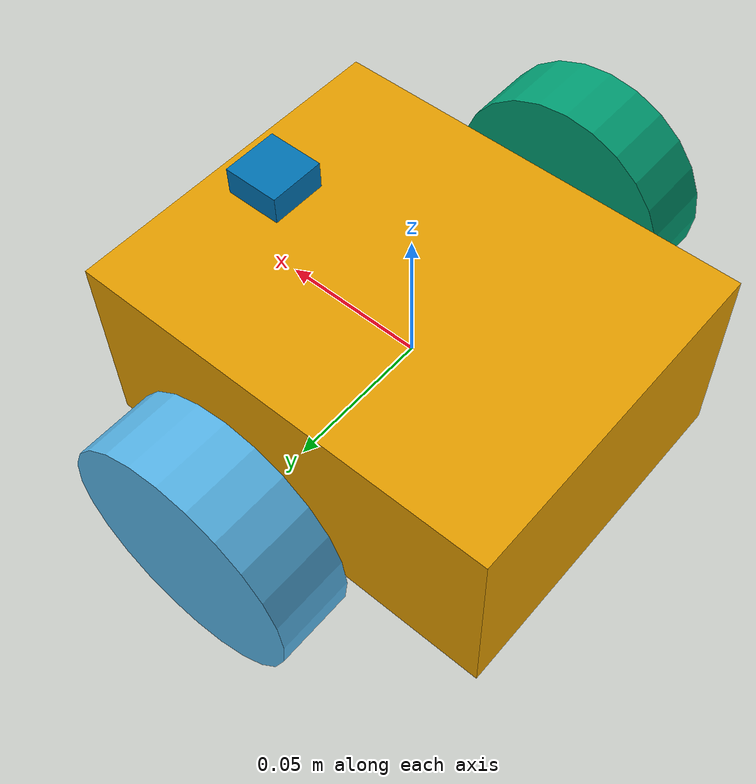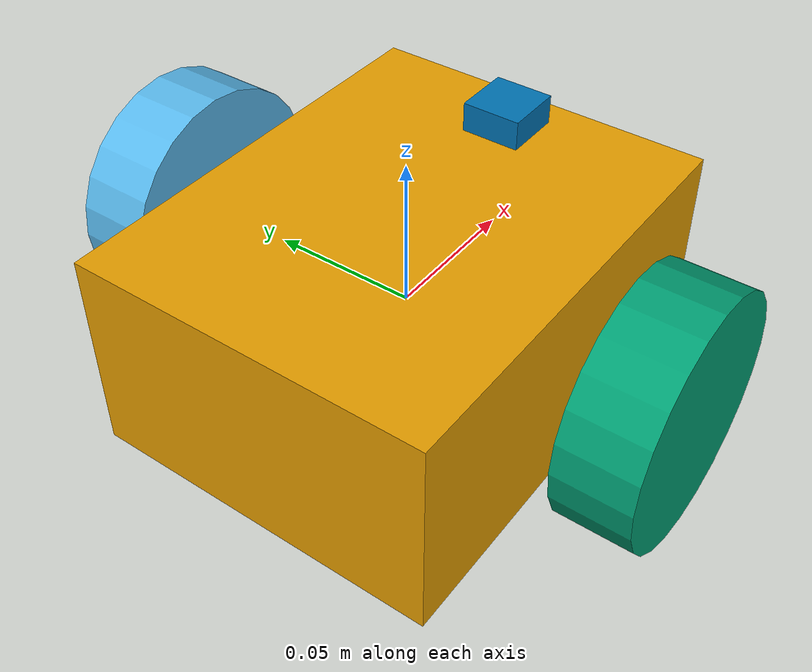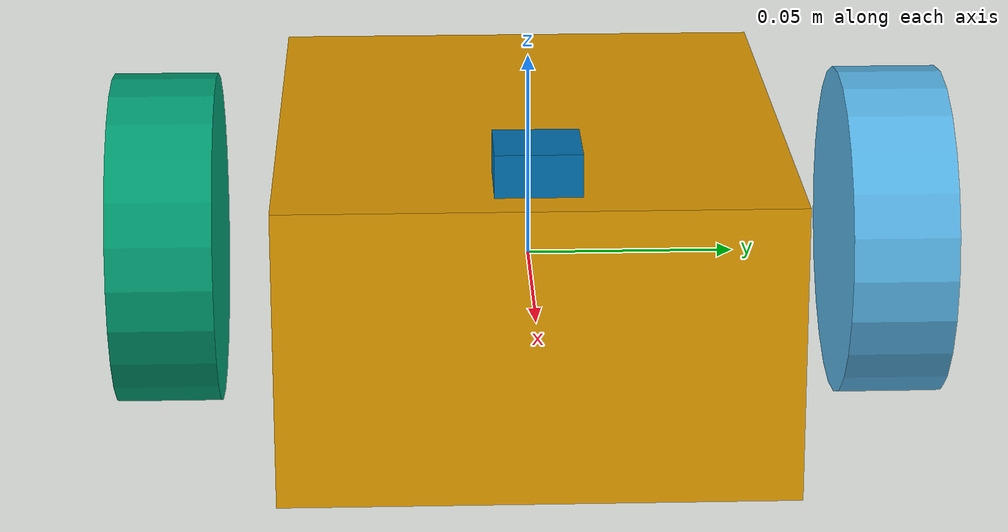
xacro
<?xml version="1.0"?>
<robot name="pipe_bot" xmlns:xacro="http://www.ros.org/wiki/xacro">

  <!-- Constants                                                            -->
  <xacro:property name="body_len"    value="0.150"/>
  <xacro:property name="body_width"  value="0.120"/>
  <xacro:property name="body_height" value="0.070"/>

  <xacro:property name="wheel_radius" value="0.040"/>
  <xacro:property name="wheel_len"    value="0.025"/>
  <!-- lateral offset from body centre to wheel centre -->
  <xacro:property name="wheel_y"      value="0.0875"/>
  <!-- wheel axle is level with the bottom face of the body -->
  <xacro:property name="wheel_z"      value="${-body_height/2 + wheel_radius}"/>

  <xacro:property name="caster_r"    value="0.015"/>
  <xacro:property name="caster_x"    value="${-body_len/2 + caster_r}"/>
  <xacro:property name="caster_z"    value="${-body_height/2 + caster_r}"/>

  <!-- Inertia helpers -->
  <xacro:macro name="box_inertia" params="m lx ly lz">
    <inertial>
      <mass value="${m}"/>
      <inertia
        ixx="${m*(ly*ly+lz*lz)/12}"  ixy="0" ixz="0"
        iyy="${m*(lx*lx+lz*lz)/12}"  iyz="0"
        izz="${m*(lx*lx+ly*ly)/12}"/>
    </inertial>
  </xacro:macro>

  <xacro:macro name="cylinder_inertia" params="m r l">
    <inertial>
      <mass value="${m}"/>
      <inertia
        ixx="${m*(3*r*r+l*l)/12}" ixy="0" ixz="0"
        iyy="${m*(3*r*r+l*l)/12}" iyz="0"
        izz="${m*r*r/2}"/>
    </inertial>
  </xacro:macro>

  <xacro:macro name="sphere_inertia" params="m r">
    <inertial>
      <mass value="${m}"/>
      <inertia
        ixx="${2*m*r*r/5}" ixy="0" ixz="0"
        iyy="${2*m*r*r/5}" iyz="0"
        izz="${2*m*r*r/5}"/>
    </inertial>
  </xacro:macro>

  <!-- base_link — robot body                                               -->
  <link name="base_link">
    <xacro:box_inertia m="3.0"
      lx="${body_len}" ly="${body_width}" lz="${body_height}"/>
    <visual>
      <geometry>
        <box size="${body_len} ${body_width} ${body_height}"/>
      </geometry>
    </visual>
    <collision>
      <geometry>
        <box size="${body_len} ${body_width} ${body_height}"/>
      </geometry>
    </collision>
  </link>

  <!-- Left wheel                                                           -->
  <joint name="left_wheel_joint" type="continuous">
    <parent link="base_link"/>
    <child  link="left_wheel"/>
    <origin xyz="0 ${wheel_y} ${wheel_z}" rpy="${pi/2} 0 0"/>
    <axis   xyz="0 0 1"/>
  </joint>

  <link name="left_wheel">
    <xacro:cylinder_inertia m="0.3" r="${wheel_radius}" l="${wheel_len}"/>
    <visual>
      <geometry>
        <cylinder radius="${wheel_radius}" length="${wheel_len}"/>
      </geometry>
    </visual>
    <collision>
      <geometry>
        <cylinder radius="${wheel_radius}" length="${wheel_len}"/>
      </geometry>
    </collision>
  </link>

  <!-- Right wheel                                                          -->
  <joint name="right_wheel_joint" type="continuous">
    <parent link="base_link"/>
    <child  link="right_wheel"/>
    <origin xyz="0 ${-wheel_y} ${wheel_z}" rpy="${pi/2} 0 0"/>
    <axis   xyz="0 0 1"/>
  </joint>

  <link name="right_wheel">
    <xacro:cylinder_inertia m="0.3" r="${wheel_radius}" l="${wheel_len}"/>
    <visual>
      <geometry>
        <cylinder radius="${wheel_radius}" length="${wheel_len}"/>
      </geometry>
    </visual>
    <collision>
      <geometry>
        <cylinder radius="${wheel_radius}" length="${wheel_len}"/>
      </geometry>
    </collision>
  </link>

  <!-- Caster (rear, passive — fixed joint, frictionless in Gazebo)        -->
  <joint name="caster_joint" type="fixed">
    <parent link="base_link"/>
    <child  link="caster_link"/>
    <origin xyz="${caster_x} 0 ${caster_z}" rpy="0 0 0"/>
  </joint>

  <link name="caster_link">
    <xacro:sphere_inertia m="0.05" r="${caster_r}"/>
    <visual>
      <geometry>
        <sphere radius="${caster_r}"/>
      </geometry>
    </visual>
    <collision>
      <geometry>
        <sphere radius="${caster_r}"/>
      </geometry>
    </collision>
  </link>

  <!-- camera_link                                                          -->
  <!-- Mounted on top of the body, near the front face.                    -->
  <!-- Looks forward along the robot +X axis.                              -->
  <!-- With a 180-deg fisheye the pipe wall appears at ~50% image radius.  -->
  <joint name="camera_joint" type="fixed">
    <parent link="base_link"/>
    <child  link="camera_link"/>
    <!-- Front of body (x = body_len/2 - 0.02 m inset), top face (z = body_height/2) -->
    <origin xyz="${body_len/2 - 0.02} 0 ${body_height/2}" rpy="0 0 0"/>
  </joint>

  <link name="camera_link">
    <inertial>
      <mass value="0.05"/>
      <inertia ixx="1e-6" ixy="0" ixz="0"
               iyy="1e-6" iyz="0"
               izz="1e-6"/>
    </inertial>
    <visual>
      <geometry>
        <box size="0.02 0.02 0.02"/>
      </geometry>
    </visual>
    <collision>
      <geometry>
        <box size="0.02 0.02 0.02"/>
      </geometry>
    </collision>
  </link>

  <!-- imu_link                                                             -->
  <!-- Mounted at the body centre.                                          -->
  <joint name="imu_joint" type="fixed">
    <parent link="base_link"/>
    <child  link="imu_link"/>
    <origin xyz="0 0 0" rpy="0 0 0"/>
  </joint>

  <link name="imu_link">
    <inertial>
      <mass value="0.01"/>
      <inertia ixx="1e-7" ixy="0" ixz="0"
               iyy="1e-7" iyz="0"
               izz="1e-7"/>
    </inertial>
    <visual>
      <geometry>
        <box size="0.01 0.01 0.01"/>
      </geometry>
    </visual>
  </link>

  <!-- Gazebo Harmonic plugins                                              -->

  <!-- Frictionless caster so it does not fight the diff-drive odometry -->
  <gazebo reference="caster_link">
    <mu1>0.0</mu1>
    <mu2>0.0</mu2>
    <kp>1000000.0</kp>
    <kd>100.0</kd>
  </gazebo>

  <!-- Wheel friction (good traction on pipe floor) -->
  <gazebo reference="left_wheel">
    <mu1>1.0</mu1>
    <mu2>1.0</mu2>
  </gazebo>
  <gazebo reference="right_wheel">
    <mu1>1.0</mu1>
    <mu2>1.0</mu2>
  </gazebo>

  <!-- Differential drive controller -->
  <gazebo>
    <plugin filename="gz-sim-diff-drive-system"
            name="gz::sim::systems::DiffDrive">
      <left_joint>left_wheel_joint</left_joint>
      <right_joint>right_wheel_joint</right_joint>
      <!-- 2 * wheel_y = 2 * 0.0875 -->
      <wheel_separation>0.175</wheel_separation>
      <wheel_radius>0.040</wheel_radius>
      <odom_publish_frequency>30</odom_publish_frequency>
      <!-- Gazebo internal topic names (bridged to ROS2 in Step 8) -->
      <topic>/cmd_vel</topic>
      <odom_topic>/odom</odom_topic>
      <tf_topic>/tf</tf_topic>
      <frame_id>odom</frame_id>
      <child_frame_id>base_link</child_frame_id>
    </plugin>
  </gazebo>

  <!-- Joint state publisher (wheel angles for robot_state_publisher) -->
  <gazebo>
    <plugin filename="gz-sim-joint-state-publisher-system"
            name="gz::sim::systems::JointStatePublisher">
      <topic>/joint_states</topic>
    </plugin>
  </gazebo>

  <!-- camera_link exists for TF; images provided by synthetic_camera_node.
       gz-sim-sensors-system (Ogre2) removed to avoid WSL2 rendering crash. -->

  <!-- IMU sensor on imu_link -->
  <gazebo reference="imu_link">
    <sensor name="imu_sensor" type="imu">
      <always_on>1</always_on>
      <update_rate>100</update_rate>
      <topic>/imu/data</topic>
      <imu>
        <angular_velocity>
          <x><noise type="gaussian"><mean>0</mean><stddev>0.0002</stddev></noise></x>
          <y><noise type="gaussian"><mean>0</mean><stddev>0.0002</stddev></noise></y>
          <z><noise type="gaussian"><mean>0</mean><stddev>0.0002</stddev></noise></z>
        </angular_velocity>
        <linear_acceleration>
          <x><noise type="gaussian"><mean>0</mean><stddev>0.017</stddev></noise></x>
          <y><noise type="gaussian"><mean>0</mean><stddev>0.017</stddev></noise></y>
          <z><noise type="gaussian"><mean>0</mean><stddev>0.017</stddev></noise></z>
        </linear_acceleration>
      </imu>
    </sensor>
  </gazebo>

</robot>
